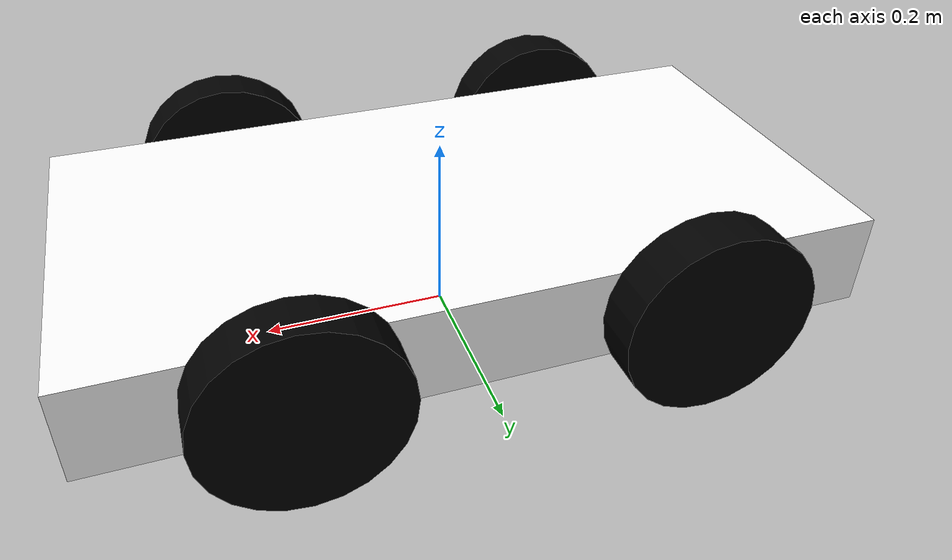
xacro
<?xml version="1.0"?>
<!-- specify to use the xacro in xml namespace  -->
<robot name="rover" xmlns:xacro="http://www.ros.org/wiki/xacro">

    <!-- common-xacro-params -->
    <xacro:property name="length" value="0.8" />
    <xacro:property name="breadth" value="0.4" />
    <xacro:property name="height" value="0.1" />
    <xacro:property name="wheel_radius" value="0.1" />
    <xacro:property name="wheel_length" value="0.05" />
    <xacro:property name="base_mass" value="5.0" />

    <!-- materials -->
    <xacro:macro name="material" params="name color">
        <material name="${name}">
            <color rgba="${color}" />
        </material>
    </xacro:macro>

    <xacro:material name="black" color="0.0 0.0 0.0 1.0" />
    <xacro:material name="white" color="1.0 1.0 1.0 1.0" />

    <!-- wheel-macro -->
    <xacro:macro name="wheel" params="wheel_position reflect_x reflect_y parent">
        <link name="${wheel_position}_wheel">
            <visual>
                <geometry>
                    <cylinder radius="${wheel_radius}" length="${wheel_length}" />
                </geometry>
                <origin xyz="0.0 0.0 0.0" rpy="1.573 0.0 0.0" />
                <material name="black" />
            </visual>
            <collision>
                <geometry>
                    <cylinder radius="${wheel_radius}" length="${wheel_length}" />
                </geometry>
                <origin xyz="0.0 0.0 0.0" rpy="1.573 0.0 0.0" />
            </collision>
        </link>
        <joint name="base_${wheel_position}_wheel" type="continuous">
            <origin
                xyz="${reflect_x * (length / 4)} ${reflect_y * (breadth / 2 + wheel_length / 2)} 0.0"
                rpy="0.0 0.0 0.0" />
            <parent link="${parent}" />
            <child link="${wheel_position}_wheel" />
            <axis xyz="0.0 1.0 0.0" />
        </joint>
    </xacro:macro>

    <!-- footprint -->
    <link name="robot_footprint" />

    <!-- base-link -->
    <link name="base_link">
        <visual>
            <geometry>
                <box size="${length} ${breadth} ${height}" />
            </geometry>
            <material name="white" />
        </visual>
        <collision>
            <geometry>
                <box size="${length} ${breadth} ${height}" />
            </geometry>
        </collision>
        <inertial>
            <mass value="${base_mass}" />
            <inertia ixx="0.0" ixy="0.0" ixz="0.0" iyy="0.0" iyz="0.0" izz="0.0" />
        </inertial>
    </link>

    <!-- base-joint -->
    <joint name="base_joint" type="fixed">
        <parent link="robot_footprint" />
        <child link="base_link" />
        <origin xyz="0.0 0.0 0.1" rpy="0.0 0.0 0.0" />
    </joint>

    <!-- wheels -->
    <xacro:wheel wheel_position="left_front" reflect_x="1.0" reflect_y="1.0" parent="base_link" />
    <xacro:wheel wheel_position="right_front" reflect_x="1.0" reflect_y="-1.0" parent="base_link" />
    <xacro:wheel wheel_position="left_back" reflect_x="-1.0" reflect_y="1.0" parent="base_link" />
    <xacro:wheel wheel_position="right_back" reflect_x="-1.0" reflect_y="-1.0" parent="base_link" />

</robot>
